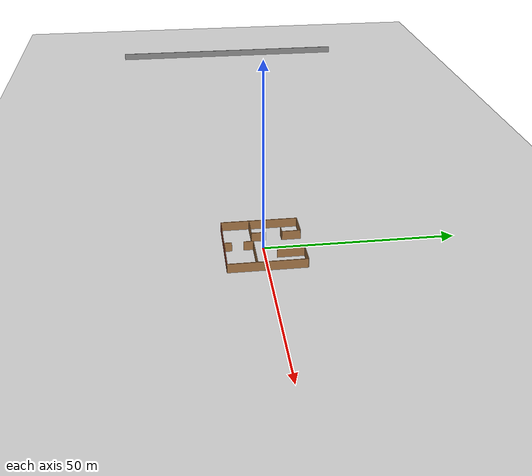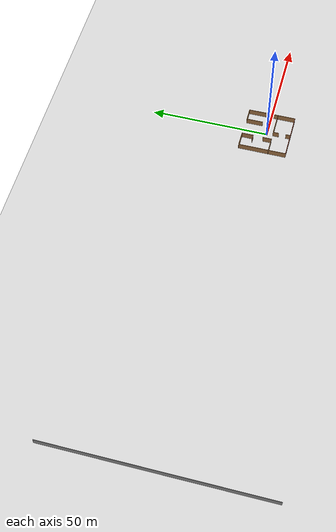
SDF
<sdf version="1.7">
 <world name="default">
  <light name="sun" type="directional">
   <pose>0 0 10 0 -0 0</pose>
   <diffuse>0.8 0.8 0.8 1</diffuse>
   <specular>0.2 0.2 0.2 1</specular>
   <attenuation>
    <range>1000</range>
    <constant>0.9</constant>
    <linear>0.01</linear>
    <quadratic>0.001</quadratic>
   </attenuation>
   <direction>-0.5 0.1 -0.9</direction>
   <spot><inner_angle>0</inner_angle><outer_angle>0</outer_angle><falloff>0</falloff></spot>
  </light>
  <model name="ground_plane">
   <static>1</static>
   <link name="link">
    <collision name="collision">
     <geometry><plane><normal>0 0 1</normal><size>100 100</size></plane></geometry>
     <surface><friction><ode><mu>100</mu><mu2>50</mu2></ode></friction></surface>
    </collision>
    <visual name="visual">
     <cast_shadows>0</cast_shadows>
     <geometry><plane><normal>0 0 1</normal><size>100 100</size></plane></geometry>
     <material>
      <script><uri>file://media/materials/scripts/gazebo.material</uri><name>Gazebo/Grey</name></script>
     </material>
    </visual>
   </link>
  </model>
  <gravity>0 0 -9.8</gravity>
  <magnetic_field>6e-06 2.3e-05 -4.2e-05</magnetic_field>
  <atmosphere type="adiabatic"/>
  <physics type="ode">
   <max_step_size>0.001</max_step_size>
   <real_time_factor>1</real_time_factor>
   <real_time_update_rate>1000</real_time_update_rate>
  </physics>
  <scene><ambient>0.4 0.4 0.4 1</ambient><background>0.7 0.7 0.7 1</background><shadows>1</shadows></scene>
  <spherical_coordinates>
   <surface_model>EARTH_WGS84</surface_model>
   <latitude_deg>0</latitude_deg>
   <longitude_deg>0</longitude_deg>
   <elevation>0</elevation>
   <heading_deg>0</heading_deg>
  </spherical_coordinates>
  <model name="our_world">
   <pose>-74.6636 4.9035 0 0 -0 0</pose>
   <link name="Wall_13">
    <collision name="Wall_13_Collision">
     <geometry><box><size>20.25 0.15 2.5</size></box></geometry>
     <pose>0 0 1.25 0 -0 0</pose>
    </collision>
    <visual name="Wall_13_Visual">
     <pose>0 0 1.25 0 -0 0</pose>
     <geometry><box><size>20.25 0.15 2.5</size></box></geometry>
     <material>
      <script><uri>file://media/materials/scripts/gazebo.material</uri><name>Gazebo/Wood</name></script>
      <ambient>1 1 1 1</ambient>
     </material>
     <meta><layer>0</layer></meta>
    </visual>
    <pose>64.5934 -4.79263 0 0 -0 -1.5708</pose>
   </link>
   <link name="Wall_14">
    <collision name="Wall_14_Collision">
     <geometry><box><size>20 0.15 2.5</size></box></geometry>
     <pose>0 0 1.25 0 -0 0</pose>
    </collision>
    <visual name="Wall_14_Visual">
     <pose>0 0 1.25 0 -0 0</pose>
     <geometry><box><size>20 0.15 2.5</size></box></geometry>
     <material>
      <script><uri>file://media/materials/scripts/gazebo.material</uri><name>Gazebo/Bricks</name></script>
      <ambient>1 1 1 1</ambient>
     </material>
     <meta><layer>0</layer></meta>
    </visual>
    <pose>74.5184 -14.8426 0 0 -0 0</pose>
   </link>
   <link name="Wall_15">
    <collision name="Wall_15_Collision">
     <geometry><box><size>20 0.15 2.5</size></box></geometry>
     <pose>0 0 1.25 0 -0 0</pose>
    </collision>
    <visual name="Wall_15_Visual">
     <pose>0 0 1.25 0 -0 0</pose>
     <geometry><box><size>20 0.15 2.5</size></box></geometry>
     <material>
      <script><uri>file://media/materials/scripts/gazebo.material</uri><name>Gazebo/Wood</name></script>
      <ambient>1 1 1 1</ambient>
     </material>
     <meta><layer>0</layer></meta>
    </visual>
    <pose>84.4434 -4.91763 0 0 -0 1.5708</pose>
   </link>
   <link name="Wall_19">
    <collision name="Wall_19_Collision">
     <geometry><box><size>5.5 0.15 2.5</size></box></geometry>
     <pose>0 0 1.25 0 -0 0</pose>
    </collision>
    <visual name="Wall_19_Visual">
     <pose>0 0 1.25 0 -0 0</pose>
     <geometry><box><size>5.5 0.15 2.5</size></box></geometry>
     <material>
      <script><uri>file://media/materials/scripts/gazebo.material</uri><name>Gazebo/Wood</name></script>
      <ambient>1 1 1 1</ambient>
     </material>
     <meta><layer>0</layer></meta>
    </visual>
    <pose>81.7684 5.00737 0 0 -0 3.14159</pose>
   </link>
   <link name="Wall_20">
    <collision name="Wall_20_Collision">
     <geometry><box><size>7 0.15 2.5</size></box></geometry>
     <pose>0 0 1.25 0 -0 0</pose>
    </collision>
    <visual name="Wall_20_Visual">
     <pose>0 0 1.25 0 -0 0</pose>
     <geometry><box><size>7 0.15 2.5</size></box></geometry>
     <material>
      <script><uri>file://media/materials/scripts/gazebo.material</uri><name>Gazebo/Wood</name></script>
      <ambient>1 1 1 1</ambient>
     </material>
     <meta><layer>0</layer></meta>
    </visual>
    <pose>79.0934 1.58237 0 0 -0 -1.5708</pose>
   </link>
   <link name="Wall_22">
    <collision name="Wall_22_Collision">
     <geometry><box><size>6.5 0.15 2.5</size></box></geometry>
     <pose>0 0 1.25 0 -0 0</pose>
    </collision>
    <visual name="Wall_22_Visual">
     <pose>0 0 1.25 0 -0 0</pose>
     <geometry><box><size>6.5 0.15 2.5</size></box></geometry>
     <material>
      <script><uri>file://media/materials/scripts/gazebo.material</uri><name>Gazebo/Wood</name></script>
      <ambient>1 1 1 1</ambient>
     </material>
     <meta><layer>0</layer></meta>
    </visual>
    <pose>67.6754 -7.47121 0 0 -0 0</pose>
   </link>
   <link name="Wall_25">
    <collision name="Wall_25_Collision">
     <geometry><box><size>9.75 0.15 2.5</size></box></geometry>
     <pose>0 0 1.25 0 -0 0</pose>
    </collision>
    <visual name="Wall_25_Visual">
     <pose>0 0 1.25 0 -0 0</pose>
     <geometry><box><size>9.75 0.15 2.5</size></box></geometry>
     <material>
      <script><uri>file://media/materials/scripts/gazebo.material</uri><name>Gazebo/Wood</name></script>
      <ambient>1 1 1 1</ambient>
     </material>
     <meta><layer>0</layer></meta>
    </visual>
    <pose>79.5661 -7.42469 0 0 -0 3.14159</pose>
   </link>
   <link name="Wall_26">
    <collision name="Wall_26_Collision">
     <geometry><box><size>2.5 0.15 2.5</size></box></geometry>
     <pose>0 0 1.25 0 -0 0</pose>
    </collision>
    <visual name="Wall_26_Visual">
     <pose>0 0 1.25 0 -0 0</pose>
     <geometry><box><size>2.5 0.15 2.5</size></box></geometry>
     <material>
      <script><uri>file://media/materials/scripts/gazebo.material</uri><name>Gazebo/Wood</name></script>
      <ambient>1 1 1 1</ambient>
     </material>
     <meta><layer>0</layer></meta>
    </visual>
    <pose>74.7661 -8.59969 0 0 -0 -1.5708</pose>
   </link>
   <link name="Wall_28">
    <collision name="Wall_28_Collision">
     <geometry><box><size>2 0.15 2.5</size></box></geometry>
     <pose>0 0 1.25 0 -0 0</pose>
    </collision>
    <visual name="Wall_28_Visual">
     <pose>0 0 1.25 0 -0 0</pose>
     <geometry><box><size>2 0.15 2.5</size></box></geometry>
     <material>
      <script><uri>file://media/materials/scripts/gazebo.material</uri><name>Gazebo/Wood</name></script>
      <ambient>1 1 1 1</ambient>
     </material>
     <meta><layer>0</layer></meta>
    </visual>
    <pose>74.8287 -13.8505 0 0 -0 1.5708</pose>
   </link>
   <link name="Wall_3">
    <collision name="Wall_3_Collision">
     <geometry><box><size>89.5 0.15 2.5</size></box></geometry>
     <pose>0 0 1.25 0 -0 0</pose>
    </collision>
    <visual name="Wall_3_Visual">
     <pose>0 0 1.25 0 -0 0</pose>
     <geometry><box><size>89.5 0.15 2.5</size></box></geometry>
     <material>
      <script><uri>file://media/materials/scripts/gazebo.material</uri><name>Gazebo/Grey</name></script>
      <ambient>1 1 1 1</ambient>
     </material>
     <meta><layer>0</layer></meta>
    </visual>
    <pose>-84.4434 2e-06 0 0 -0 1.5708</pose>
   </link>
   <link name="Wall_30">
    <collision name="Wall_30_Collision">
     <geometry><box><size>6.5 0.15 2.5</size></box></geometry>
     <pose>0 0 1.25 0 -0 0</pose>
    </collision>
    <visual name="Wall_30_Visual">
     <pose>0 0 1.25 0 -0 0</pose>
     <geometry><box><size>6.5 0.15 2.5</size></box></geometry>
     <material>
      <script><uri>file://media/materials/scripts/gazebo.material</uri><name>Gazebo/Wood</name></script>
      <ambient>1 1 1 1</ambient>
     </material>
     <meta><layer>0</layer></meta>
    </visual>
    <pose>67.7684 5.25737 0 0 -0 0</pose>
   </link>
   <link name="Wall_31">
    <collision name="Wall_31_Collision">
     <geometry><box><size>5 0.15 2.5</size></box></geometry>
     <pose>0 0 1.25 0 -0 0</pose>
    </collision>
    <visual name="Wall_31_Visual">
     <pose>0 0 1.25 0 -0 0</pose>
     <geometry><box><size>5 0.15 2.5</size></box></geometry>
     <material>
      <script><uri>file://media/materials/scripts/gazebo.material</uri><name>Gazebo/Wood</name></script>
      <ambient>1 1 1 1</ambient>
     </material>
     <meta><layer>0</layer></meta>
    </visual>
    <pose>70.9434 2.83237 0 0 -0 -1.5708</pose>
   </link>
   <link name="Wall_32">
    <collision name="Wall_32_Collision">
     <geometry><box><size>2.25 0.15 2.5</size></box></geometry>
     <pose>0 0 1.25 0 -0 0</pose>
    </collision>
    <visual name="Wall_32_Visual">
     <pose>0 0 1.25 0 -0 0</pose>
     <geometry><box><size>2.25 0.15 2.5</size></box></geometry>
     <material>
      <script><uri>file://media/materials/scripts/gazebo.material</uri><name>Gazebo/Wood</name></script>
      <ambient>1 1 1 1</ambient>
     </material>
     <meta><layer>0</layer></meta>
    </visual>
    <pose>69.8934 0.407373 0 0 -0 3.14159</pose>
   </link>
   <link name="Wall_34">
    <collision name="Wall_34_Collision">
     <geometry><box><size>3.75 0.15 2.5</size></box></geometry>
     <pose>0 0 1.25 0 -0 0</pose>
    </collision>
    <visual name="Wall_34_Visual">
     <pose>0 0 1.25 0 -0 0</pose>
     <geometry><box><size>3.75 0.15 2.5</size></box></geometry>
     <material>
      <script><uri>file://media/materials/scripts/gazebo.material</uri><name>Gazebo/Wood</name></script>
      <ambient>1 1 1 1</ambient>
     </material>
     <meta><layer>0</layer></meta>
    </visual>
    <pose>70.8504 -5.67121 0 0 -0 1.5708</pose>
   </link>
   <static>1</static>
  </model>
 </world>
</sdf>
